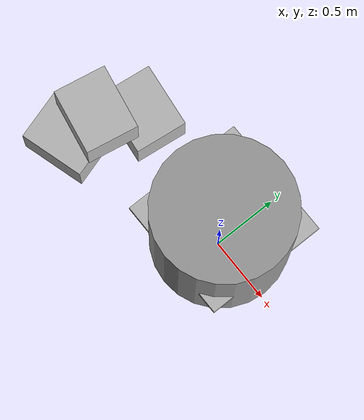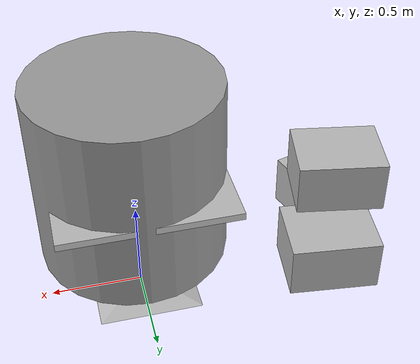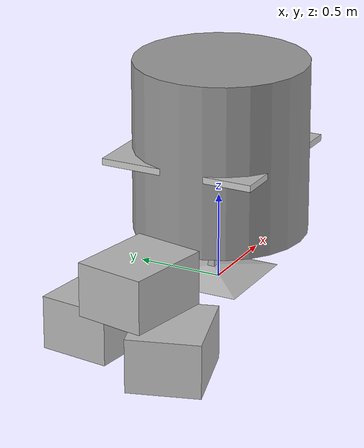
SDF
<sdf version="1.7">
 <world name="default">
  <light name="sun" type="directional">
   <pose>0 0 10 0 -0 0</pose>
   <diffuse>0.8 0.8 0.8 1</diffuse>
   <specular>0.2 0.2 0.2 1</specular>
   <attenuation>
    <range>1000</range>
    <constant>0.9</constant>
    <linear>0.01</linear>
    <quadratic>0.001</quadratic>
   </attenuation>
   <direction>-0.5 0.1 -0.9</direction>
   <spot><inner_angle>0</inner_angle><outer_angle>0</outer_angle><falloff>0</falloff></spot>
  </light>
  <gravity>0 0 -9.8</gravity>
  <magnetic_field>6e-06 2.3e-05 -4.2e-05</magnetic_field>
  <atmosphere type="adiabatic"/>
  <physics type="ode">
   <max_step_size>0.001</max_step_size>
   <real_time_factor>1</real_time_factor>
   <real_time_update_rate>1000</real_time_update_rate>
  </physics>
  <scene><ambient>0.4 0.4 0.4 1</ambient><background>0.7 0.7 0.7 1</background><shadows>1</shadows></scene>
  <audio><device>default</device></audio>
  <spherical_coordinates>
   <surface_model>EARTH_WGS84</surface_model>
   <latitude_deg>0</latitude_deg>
   <longitude_deg>0</longitude_deg>
   <elevation>0</elevation>
   <heading_deg>0</heading_deg>
  </spherical_coordinates>
  <model name="cafe_table">
   <static>1</static>
   <link name="link">
    <collision name="surface">
     <pose>0 0 0.755 0 -0 0</pose>
     <geometry><box><size>0.913 0.913 0.04</size></box></geometry>
    </collision>
    <collision name="column">
     <pose>0 0 0.37 0 -0 0</pose>
     <geometry><box><size>0.042 0.042 0.74</size></box></geometry>
    </collision>
    <collision name="base">
     <pose>0 0 0.02 0 -0 0</pose>
     <geometry><box><size>0.56 0.56 0.04</size></box></geometry>
    </collision>
    <visual name="visual">
     <geometry><mesh><uri>model://cafe_table/meshes/cafe_table.dae</uri></mesh></geometry>
    </visual>
   </link>
   <pose>-0.010661 0.031282 0.014635 0 -0 0</pose>
  </model>
  <model name="cardboard_box">
   <pose>-1.26194 -0.372481 0.148999 0 -0 0.290535</pose>
   <link name="link">
    <inertial>
     <mass>2</mass>
     <inertia>
      <ixx>0.0416667</ixx>
      <ixy>0</ixy>
      <ixz>0</ixz>
      <iyy>0.0566667</iyy>
      <iyz>0</iyz>
      <izz>0.0683333</izz>
     </inertia>
    </inertial>
    <collision name="collision">
     <geometry><box><size>0.5 0.4 0.3</size></box></geometry>
     <surface>
      <friction><ode><mu>1</mu><mu2>1</mu2></ode></friction>
      <contact><ode><kp>1e+07</kp><kd>1</kd><min_depth>0.001</min_depth><max_vel>0.1</max_vel></ode></contact>
     </surface>
    </collision>
    <visual name="visual">
     <pose>0 0 -0.15 0 -0 0</pose>
     <geometry>
      <mesh><uri>model://cardboard_box/meshes/cardboard_box.dae</uri><scale>1.25932 1.00745 0.755591</scale></mesh>
     </geometry>
    </visual>
   </link>
  </model>
  <model name="cardboard_box_0">
   <pose>-1.06223 0.161916 0.148999 1e-06 -0 -0.11928</pose>
   <link name="link">
    <inertial>
     <mass>2</mass>
     <inertia>
      <ixx>0.0416667</ixx>
      <ixy>0</ixy>
      <ixz>0</ixz>
      <iyy>0.0566667</iyy>
      <iyz>0</iyz>
      <izz>0.0683333</izz>
     </inertia>
    </inertial>
    <collision name="collision">
     <geometry><box><size>0.5 0.4 0.3</size></box></geometry>
     <surface>
      <friction><ode><mu>1</mu><mu2>1</mu2></ode></friction>
      <contact><ode><kp>1e+07</kp><kd>1</kd><min_depth>0.001</min_depth><max_vel>0.1</max_vel></ode></contact>
     </surface>
    </collision>
    <visual name="visual">
     <pose>0 0 -0.15 0 -0 0</pose>
     <geometry>
      <mesh><uri>model://cardboard_box/meshes/cardboard_box.dae</uri><scale>1.25932 1.00745 0.755591</scale></mesh>
     </geometry>
    </visual>
   </link>
  </model>
  <model name="cardboard_box_1">
   <pose>-1.20086 -0.146631 0.447999 0 -0 -0.180137</pose>
   <link name="link">
    <inertial>
     <mass>2</mass>
     <inertia>
      <ixx>0.0416667</ixx>
      <ixy>0</ixy>
      <ixz>0</ixz>
      <iyy>0.0566667</iyy>
      <iyz>0</iyz>
      <izz>0.0683333</izz>
     </inertia>
    </inertial>
    <collision name="collision">
     <geometry><box><size>0.5 0.4 0.3</size></box></geometry>
     <surface>
      <friction><ode><mu>1</mu><mu2>1</mu2></ode></friction>
      <contact><ode><kp>1e+07</kp><kd>1</kd><min_depth>0.001</min_depth><max_vel>0.1</max_vel></ode></contact>
     </surface>
    </collision>
    <visual name="visual">
     <pose>0 0 -0.15 0 -0 0</pose>
     <geometry>
      <mesh><uri>model://cardboard_box/meshes/cardboard_box.dae</uri><scale>1.25932 1.00745 0.755591</scale></mesh>
     </geometry>
    </visual>
   </link>
  </model>
  <model name="TicTacToe_Board_0">
   <link name="link_0">
    <inertial>
     <mass>1</mass>
     <inertia>
      <ixx>0.166667</ixx>
      <ixy>0</ixy>
      <ixz>0</ixz>
      <iyy>0.166667</iyy>
      <iyz>0</iyz>
      <izz>0.166667</izz>
     </inertia>
    </inertial>
    <pose>4e-06 -0 0 0 -0 0</pose>
    <visual name="visual">
     <geometry>
      <mesh>
       <uri>/home/sanmaster/onshape-to-robot-tutorial/delta_robot_min_ws/src/my_second_delta/meshes/tictactoe_Board.stl</uri>
       <scale>0.001 0.001 0.001</scale>
      </mesh>
     </geometry>
     <material>
      <lighting>1</lighting>
      <shader type="pixel"/>
      <ambient>0.8 0.6 0.2 1</ambient>
      <diffuse>0.8 0.6 0.2 1</diffuse>
      <specular>0 0 0 1</specular>
      <emissive>0 0 0 1</emissive>
      <shininess>0.0</shininess>
      <reflective>0.9</reflective>
      <transparency>0.0</transparency>
     </material>
    </visual>
    <collision name="collision">
     <geometry>
      <mesh>
       <uri>/home/sanmaster/onshape-to-robot-tutorial/delta_robot_min_ws/src/my_second_delta/meshes/tictactoe_Board.stl</uri>
       <scale>0.001 0.001 0.001</scale>
      </mesh>
     </geometry>
     <surface>
      <friction>
       <ode><mu>1</mu><mu2>1</mu2><fdir1>0 0 0</fdir1><slip1>0</slip1><slip2>0</slip2></ode>
       <torsional>
        <coefficient>1</coefficient>
        <patch_radius>0</patch_radius>
        <surface_radius>0</surface_radius>
        <use_patch_radius>1</use_patch_radius>
        <ode><slip>0</slip></ode>
       </torsional>
      </friction>
      <bounce><restitution_coefficient>0</restitution_coefficient><threshold>1e+06</threshold></bounce>
      <contact>
       <collide_without_contact>0</collide_without_contact>
       <collide_without_contact_bitmask>1</collide_without_contact_bitmask>
       <collide_bitmask>1</collide_bitmask>
       <ode>
        <soft_cfm>0</soft_cfm>
        <soft_erp>0.2</soft_erp>
        <kp>1e+13</kp>
        <kd>1</kd>
        <max_vel>0.01</max_vel>
        <min_depth>0</min_depth>
       </ode>
       <bullet>
        <split_impulse>1</split_impulse>
        <split_impulse_penetration_threshold>-0.01</split_impulse_penetration_threshold>
        <soft_cfm>0</soft_cfm>
        <soft_erp>0.2</soft_erp>
        <kp>1e+13</kp>
        <kd>1</kd>
       </bullet>
      </contact>
     </surface>
    </collision>
   </link>
   <static>1</static>
   <pose>0.009684 -0.002349 0.791984 0 -0 0</pose>
  </model>
  <model name="unit_cylinder">
   <pose>0.013455 -0.00592 0.801758 0 -0 0</pose>
   <link name="link">
    <inertial>
     <mass>1</mass>
     <inertia><ixx>0.145833</ixx><ixy>0</ixy><ixz>0</ixz><iyy>0.145833</iyy><iyz>0</iyz><izz>0.125</izz></inertia>
    </inertial>
    <collision name="collision">
     <geometry><cylinder><radius>0.5</radius><length>0.999997</length></cylinder></geometry>
    </collision>
    <visual name="visual">
     <geometry><cylinder><radius>0.5</radius><length>0.999997</length></cylinder></geometry>
     <material>
      <script><name>Gazebo/Grey</name><uri>file://media/materials/scripts/gazebo.material</uri></script>
     </material>
    </visual>
   </link>
  </model>
 </world>
</sdf>
